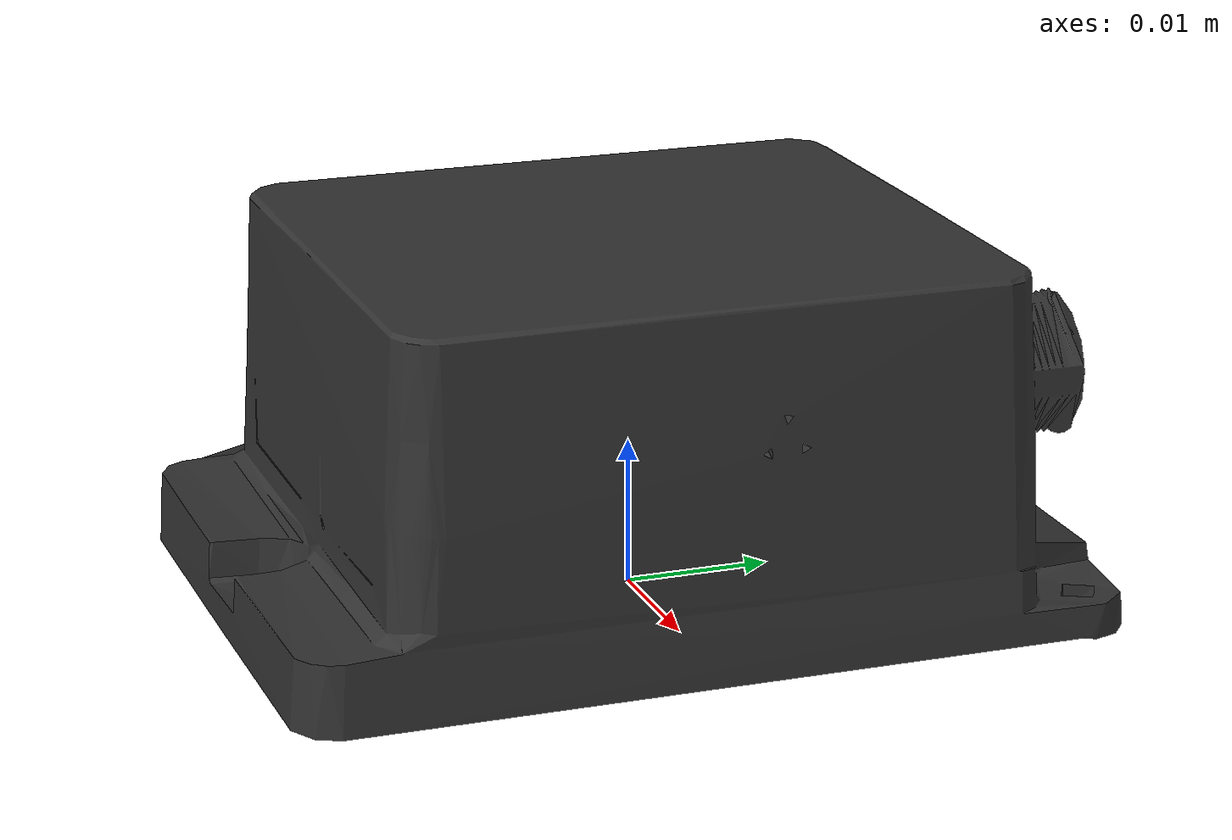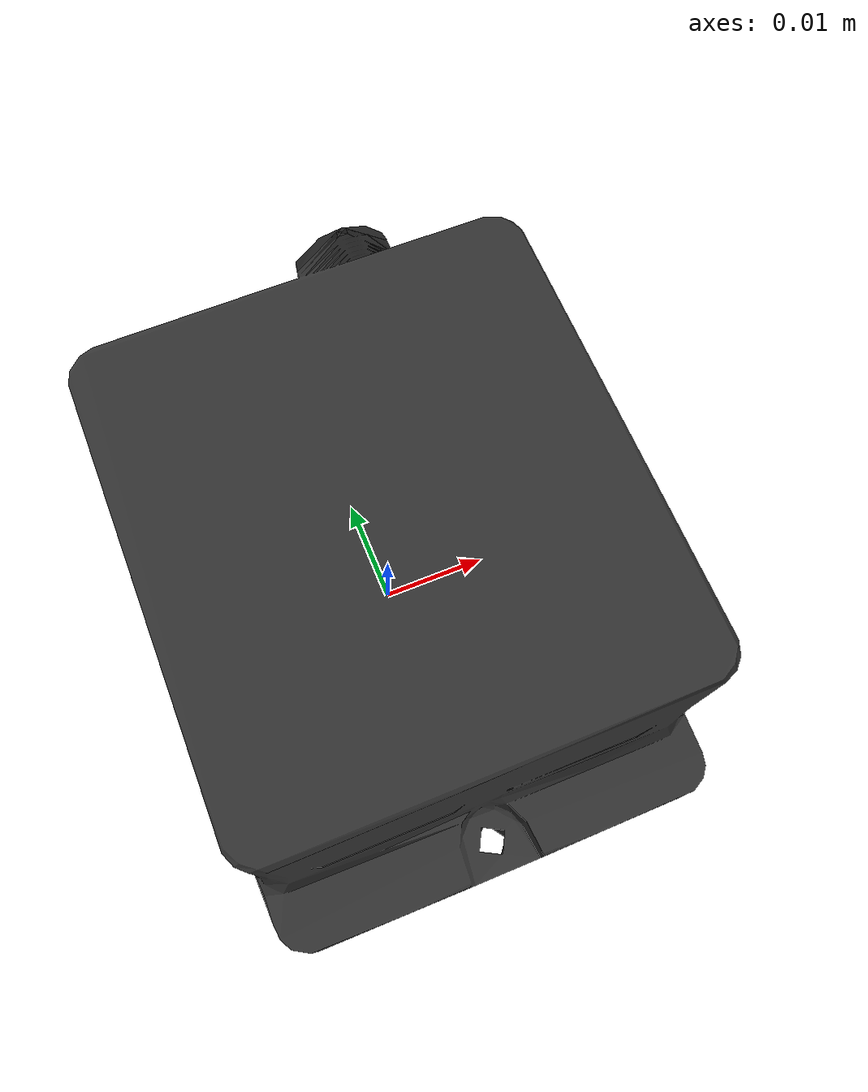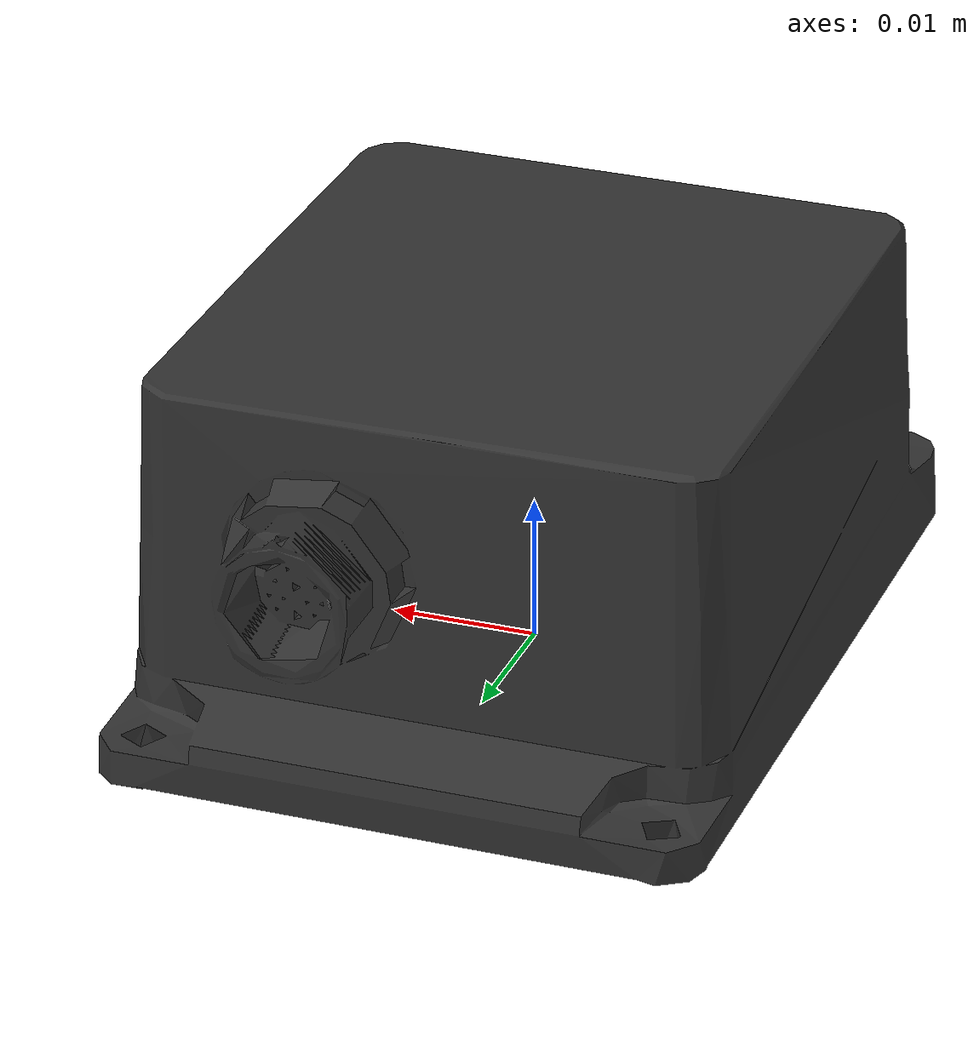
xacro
<?xml version="1.0"?>
<!--
SPDX-FileCopyrightText: Alliander N. V.
SPDX-License-Identifier: Apache-2.0
-->
<robot xmlns:xacro="http://www.ros.org/wiki/xacro" name="imu_module">

  <xacro:macro name="xsens_imu"
    params="
    namespace
    parent
    name:=xsens
    use_sim:=false
    ">

    <link name="base_link"/>
    <link name="imu_link">

      <visual>
        <origin xyz="0 0 0" rpy="0 0 0"/>
        <geometry>
          <mesh filename="package://alliander_description/xsens/meshes/MTi-6x0R.stl" scale="0.001 0.001 0.001"/>
        </geometry>
        <material name="dark_grey">
          <color rgba="0.2 0.2 0.2 1.0"/>
        </material>
      </visual>

      <collision>
        <origin xyz="0 0 0" rpy="0 0 0"/>
        <geometry>
          <!-- 56.5 x 40.9 x 24.75 mm in metres -->
          <box size="0.0565 0.0409 0.02475"/>
        </geometry>
      </collision>

      <inertial>
        <!-- Approximate mass: 50g -->
        <mass value="0.050"/>
        <origin xyz="0 0 0" rpy="0 0 0"/>
        <!-- Box inertia tensor: I = m/12 * (a² + b²) for each axis -->
        <inertia ixx="8.22e-6" ixy="0" ixz="0"
                               iyy="1.59e-5" iyz="0"
                                              izz="2.03e-5"/>
      </inertial>

    </link>

    <!-- Gazebo requires a joint to a link called "world" for statically mounted robots -->
    <xacro:if value="${parent == 'world'}">
      <link name="${parent}" />
      <joint name="${parent}_joint" type="fixed">
        <parent link="${parent}" />
        <child link="base_link" />
      </joint>
    </xacro:if>

    <!-- Since Xsens publishes data on imu_link on hardware -->
    <joint name="imu_joint" type="fixed">
      <parent link="base_link"/>
      <child  link="imu_link"/>
      <origin xyz="0 0 0" rpy="0 0 0"/>
    </joint>

    <!-- MTi-6x0 IMU sensor specification: https://www.xsens.com/hubfs/Downloads/Manuals/MTi-600-series-datasheet.pdf -->
    <xacro:if value="${use_sim}">
      <gazebo reference="imu_link">
        <sensor name="${namespace}/imu" type="imu">
          <always_on>true</always_on>
          <update_rate>100</update_rate>
          <topic>${namespace}/imu/data</topic>
          <visualize>false</visualize>
          <enable_metrics>false</enable_metrics>
	  <gz_frame_id>${namespace}/imu_link</gz_frame_id>
          <imu>
            <orientation_reference_frame>
              <localization>ENU</localization>
            </orientation_reference_frame>
            <angular_velocity>
              <!-- Gyroscope noise density: 0.01 deg/s/sqrt(Hz), in-run bias: 2 deg/h -->
              <x><noise type="gaussian"><mean>0.0</mean><stddev>1.75e-4</stddev><bias_mean>9.7e-6</bias_mean><bias_stddev>0.0</bias_stddev></noise></x>
              <y><noise type="gaussian"><mean>0.0</mean><stddev>1.75e-4</stddev><bias_mean>9.7e-6</bias_mean><bias_stddev>0.0</bias_stddev></noise></y>
              <z><noise type="gaussian"><mean>0.0</mean><stddev>1.75e-4</stddev><bias_mean>9.7e-6</bias_mean><bias_stddev>0.0</bias_stddev></noise></z>
            </angular_velocity>
            <linear_acceleration>
              <!-- Accelerometer noise density: 0.003 m/s²/sqrt(Hz), in-run bias: 0.01 mg -->
              <x><noise type="gaussian"><mean>0.0</mean><stddev>3.0e-3</stddev><bias_mean>9.8e-5</bias_mean><bias_stddev>0.0</bias_stddev></noise></x>
              <y><noise type="gaussian"><mean>0.0</mean><stddev>3.0e-3</stddev><bias_mean>9.8e-5</bias_mean><bias_stddev>0.0</bias_stddev></noise></y>
              <z><noise type="gaussian"><mean>0.0</mean><stddev>3.0e-3</stddev><bias_mean>9.8e-5</bias_mean><bias_stddev>0.0</bias_stddev></noise></z>
            </linear_acceleration>
          </imu>
        </sensor>
      </gazebo>
    </xacro:if>

  </xacro:macro>

  <xacro:arg name="namespace" default="xsens" />
  <xacro:arg name="parent" default="" />
  <xacro:arg name="use_sim" default="false" />
  <xacro:xsens_imu
    namespace="$(arg namespace)"
    parent="$(arg parent)"
    use_sim="$(arg use_sim)" />

</robot>
